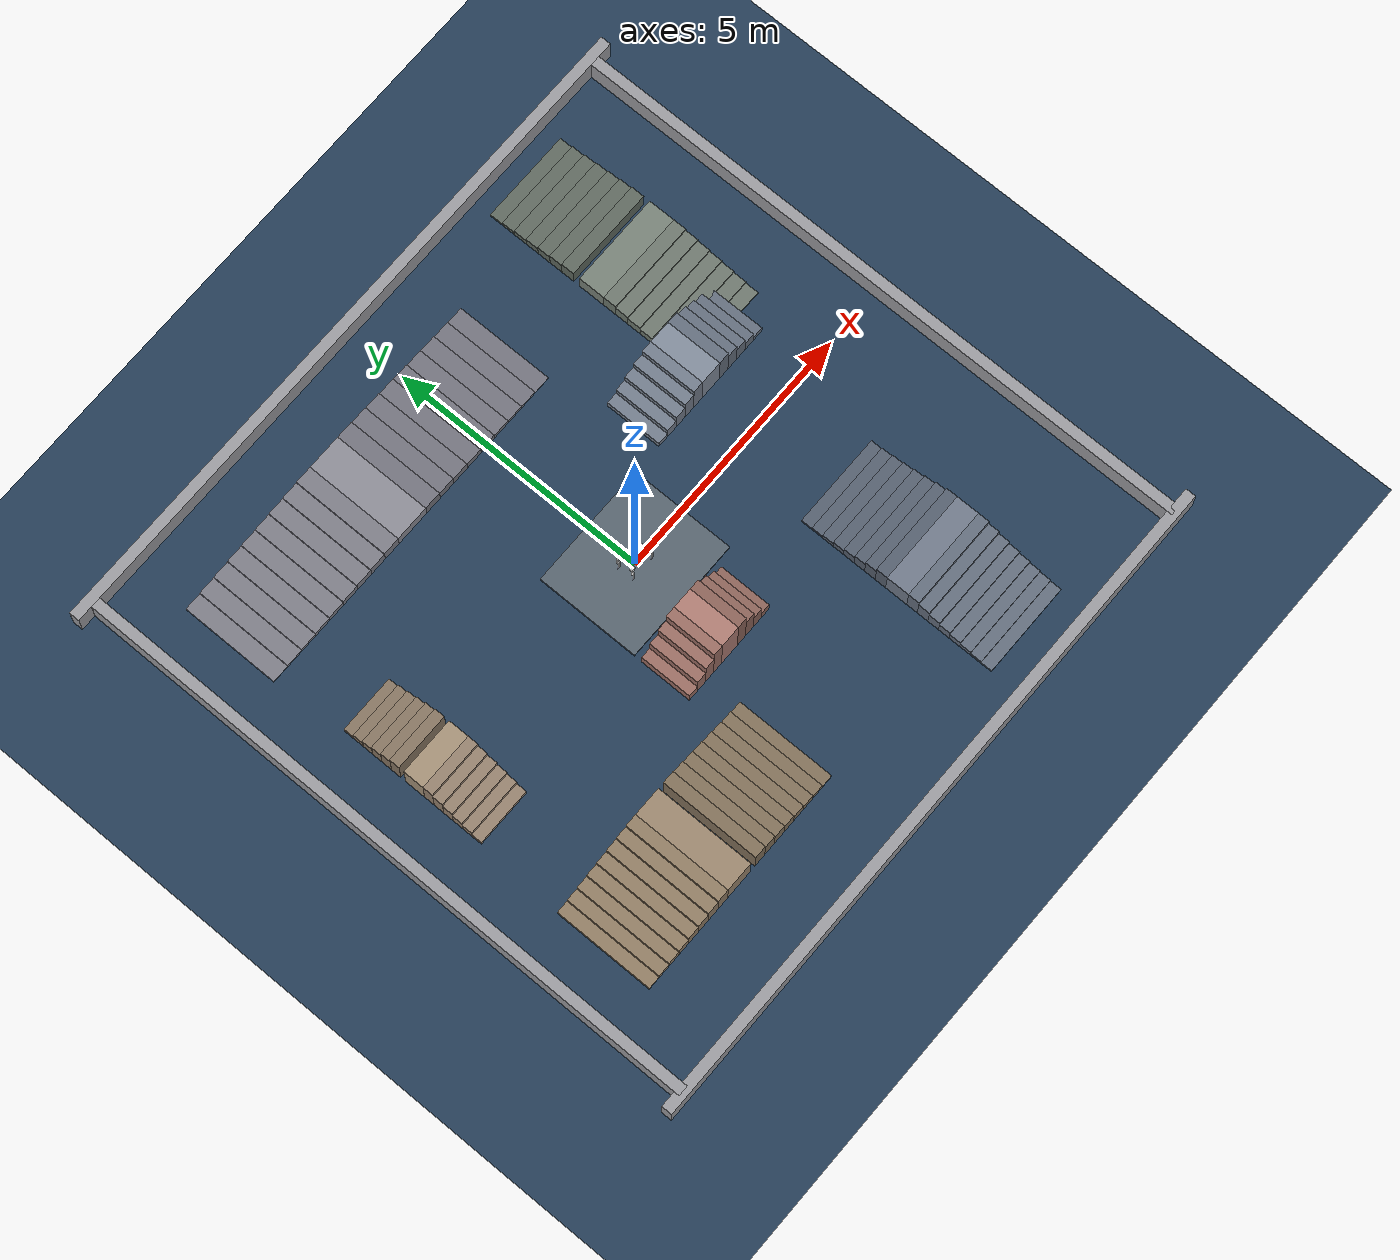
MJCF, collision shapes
<mujoco model="RCV8 scene">
  <include file="RCV8.xml"/>

  <!--
    机器人本体已经在 RCV8.xml 中改成 floating base，并设置了标准站立初始高度，
    因此 scene 不再需要通过下移地面来“迁就”模型位置。
    这里把 statistic 中心恢复到更接近常规站立机器人的高度，便于默认视角显示。
  -->
  <statistic center="0 0 0.25" extent="0.8"/>

  <visual>
    <headlight diffuse="0.6 0.6 0.6" ambient="0.3 0.3 0.3" specular="0 0 0"/>
    <rgba haze="0.15 0.25 0.35 1"/>
    <global azimuth="-130" elevation="-20"/>
  </visual>

  <asset>
    <texture type="skybox" builtin="gradient" rgb1="0.3 0.5 0.7" rgb2="0 0 0" width="512" height="3072"/>
    <texture type="2d" name="groundplane" builtin="checker" mark="edge" rgb1="0.2 0.3 0.4" rgb2="0.1 0.2 0.3" markrgb="0.8 0.8 0.8" width="300" height="300"/>
    <material name="groundplane" texture="groundplane" texuniform="true" texrepeat="5 5" reflectance="0.2"/>
  </asset>

  <worldbody>
    <light pos="0 0 2.2" dir="0 0 -1" directional="true"/>
    <geom name="floor" size="0 0 0.05" type="plane" material="groundplane"/>

    <!-- 外围围挡：用四面低墙形成方形边界，避免机器人跑出测试区域。 -->
    <geom name="wall_north" type="box" pos="0  6.20 0.25" size="6.60 0.10 0.25" rgba="0.62 0.62 0.64 1" friction="1.0 0.02 0.02"/>
    <geom name="wall_south" type="box" pos="0 -6.20 0.25" size="6.60 0.10 0.25" rgba="0.62 0.62 0.64 1" friction="1.0 0.02 0.02"/>
    <geom name="wall_east"  type="box" pos="6.20 0  0.25" size="0.10 6.20 0.25" rgba="0.62 0.62 0.64 1" friction="1.0 0.02 0.02"/>
    <geom name="wall_west"  type="box" pos="-6.20 0 0.25" size="0.10 6.20 0.25" rgba="0.62 0.62 0.64 1" friction="1.0 0.02 0.02"/>

    <!-- 中央出生平地区：留出较干净的站立与起步空间，避免初始化直接压在障碍上。 -->
    <geom name="spawn_pad" type="box" pos="0 0 0.02" size="1.20 1.00 0.02" rgba="0.35 0.40 0.44 1" friction="1.0 0.02 0.02"/>

    <!-- 左上缓坡长楼梯：9 级上行 + 平台 + 9 级下行，单级 3cm，踏步更长。 -->
    <geom name="stairs_gentle_nw_up_1"  type="box" pos="-5.10 4.10 0.015" size="0.17 0.95 0.015" rgba="0.50 0.50 0.54 1" friction="1.1 0.02 0.02"/>
    <geom name="stairs_gentle_nw_up_2"  type="box" pos="-4.76 4.10 0.030" size="0.17 0.95 0.030" rgba="0.50 0.50 0.54 1" friction="1.1 0.02 0.02"/>
    <geom name="stairs_gentle_nw_up_3"  type="box" pos="-4.42 4.10 0.045" size="0.17 0.95 0.045" rgba="0.50 0.50 0.54 1" friction="1.1 0.02 0.02"/>
    <geom name="stairs_gentle_nw_up_4"  type="box" pos="-4.08 4.10 0.060" size="0.17 0.95 0.060" rgba="0.50 0.50 0.54 1" friction="1.1 0.02 0.02"/>
    <geom name="stairs_gentle_nw_up_5"  type="box" pos="-3.74 4.10 0.075" size="0.17 0.95 0.075" rgba="0.50 0.50 0.54 1" friction="1.1 0.02 0.02"/>
    <geom name="stairs_gentle_nw_up_6"  type="box" pos="-3.40 4.10 0.090" size="0.17 0.95 0.090" rgba="0.50 0.50 0.54 1" friction="1.1 0.02 0.02"/>
    <geom name="stairs_gentle_nw_up_7"  type="box" pos="-3.06 4.10 0.105" size="0.17 0.95 0.105" rgba="0.50 0.50 0.54 1" friction="1.1 0.02 0.02"/>
    <geom name="stairs_gentle_nw_up_8"  type="box" pos="-2.72 4.10 0.120" size="0.17 0.95 0.120" rgba="0.50 0.50 0.54 1" friction="1.1 0.02 0.02"/>
    <geom name="stairs_gentle_nw_up_9"  type="box" pos="-2.38 4.10 0.135" size="0.17 0.95 0.135" rgba="0.50 0.50 0.54 1" friction="1.1 0.02 0.02"/>
    <geom name="stairs_gentle_nw_landing" type="box" pos="-1.87 4.10 0.135" size="0.34 0.95 0.135" rgba="0.56 0.56 0.60 1" friction="1.1 0.02 0.02"/>
    <geom name="stairs_gentle_nw_down_1" type="box" pos="-1.36 4.10 0.135" size="0.17 0.95 0.135" rgba="0.46 0.46 0.50 1" friction="1.1 0.02 0.02"/>
    <geom name="stairs_gentle_nw_down_2" type="box" pos="-1.02 4.10 0.120" size="0.17 0.95 0.120" rgba="0.46 0.46 0.50 1" friction="1.1 0.02 0.02"/>
    <geom name="stairs_gentle_nw_down_3" type="box" pos="-0.68 4.10 0.105" size="0.17 0.95 0.105" rgba="0.46 0.46 0.50 1" friction="1.1 0.02 0.02"/>
    <geom name="stairs_gentle_nw_down_4" type="box" pos="-0.34 4.10 0.090" size="0.17 0.95 0.090" rgba="0.46 0.46 0.50 1" friction="1.1 0.02 0.02"/>
    <geom name="stairs_gentle_nw_down_5" type="box" pos="0.00 4.10 0.075" size="0.17 0.95 0.075" rgba="0.46 0.46 0.50 1" friction="1.1 0.02 0.02"/>
    <geom name="stairs_gentle_nw_down_6" type="box" pos="0.34 4.10 0.060" size="0.17 0.95 0.060" rgba="0.46 0.46 0.50 1" friction="1.1 0.02 0.02"/>
    <geom name="stairs_gentle_nw_down_7" type="box" pos="0.68 4.10 0.045" size="0.17 0.95 0.045" rgba="0.46 0.46 0.50 1" friction="1.1 0.02 0.02"/>
    <geom name="stairs_gentle_nw_down_8" type="box" pos="1.02 4.10 0.030" size="0.17 0.95 0.030" rgba="0.46 0.46 0.50 1" friction="1.1 0.02 0.02"/>
    <geom name="stairs_gentle_nw_down_9" type="box" pos="1.36 4.10 0.015" size="0.17 0.95 0.015" rgba="0.46 0.46 0.50 1" friction="1.1 0.02 0.02"/>

    <!-- 右上中坡楼梯：7 级上行 + 平台 + 7 级下行，单级 5cm，坡度中等。 -->
    <geom name="stairs_medium_ne_up_1"  type="box" pos="4.00 1.60 0.025" size="0.90 0.13 0.025" rgba="0.44 0.48 0.44 1" friction="1.1 0.02 0.02"/>
    <geom name="stairs_medium_ne_up_2"  type="box" pos="4.00 1.86 0.050" size="0.90 0.13 0.050" rgba="0.44 0.48 0.44 1" friction="1.1 0.02 0.02"/>
    <geom name="stairs_medium_ne_up_3"  type="box" pos="4.00 2.12 0.075" size="0.90 0.13 0.075" rgba="0.44 0.48 0.44 1" friction="1.1 0.02 0.02"/>
    <geom name="stairs_medium_ne_up_4"  type="box" pos="4.00 2.38 0.100" size="0.90 0.13 0.100" rgba="0.44 0.48 0.44 1" friction="1.1 0.02 0.02"/>
    <geom name="stairs_medium_ne_up_5"  type="box" pos="4.00 2.64 0.125" size="0.90 0.13 0.125" rgba="0.44 0.48 0.44 1" friction="1.1 0.02 0.02"/>
    <geom name="stairs_medium_ne_up_6"  type="box" pos="4.00 2.90 0.150" size="0.90 0.13 0.150" rgba="0.44 0.48 0.44 1" friction="1.1 0.02 0.02"/>
    <geom name="stairs_medium_ne_up_7"  type="box" pos="4.00 3.16 0.175" size="0.90 0.13 0.175" rgba="0.44 0.48 0.44 1" friction="1.1 0.02 0.02"/>
    <geom name="stairs_medium_ne_landing" type="box" pos="4.00 3.55 0.175" size="0.90 0.26 0.175" rgba="0.48 0.52 0.48 1" friction="1.1 0.02 0.02"/>
    <geom name="stairs_medium_ne_down_1" type="box" pos="4.00 4.07 0.175" size="0.90 0.13 0.175" rgba="0.38 0.42 0.38 1" friction="1.1 0.02 0.02"/>
    <geom name="stairs_medium_ne_down_2" type="box" pos="4.00 4.33 0.150" size="0.90 0.13 0.150" rgba="0.38 0.42 0.38 1" friction="1.1 0.02 0.02"/>
    <geom name="stairs_medium_ne_down_3" type="box" pos="4.00 4.59 0.125" size="0.90 0.13 0.125" rgba="0.38 0.42 0.38 1" friction="1.1 0.02 0.02"/>
    <geom name="stairs_medium_ne_down_4" type="box" pos="4.00 4.85 0.100" size="0.90 0.13 0.100" rgba="0.38 0.42 0.38 1" friction="1.1 0.02 0.02"/>
    <geom name="stairs_medium_ne_down_5" type="box" pos="4.00 5.11 0.075" size="0.90 0.13 0.075" rgba="0.38 0.42 0.38 1" friction="1.1 0.02 0.02"/>
    <geom name="stairs_medium_ne_down_6" type="box" pos="4.00 5.37 0.050" size="0.90 0.13 0.050" rgba="0.38 0.42 0.38 1" friction="1.1 0.02 0.02"/>
    <geom name="stairs_medium_ne_down_7" type="box" pos="4.00 5.63 0.025" size="0.90 0.13 0.025" rgba="0.38 0.42 0.38 1" friction="1.1 0.02 0.02"/>

    <!-- 左下陡坡楼梯：8 级上行 + 平台 + 8 级下行，单级 7cm，踏步更短。 -->
    <geom name="stairs_steep_sw_up_1"  type="box" pos="-5.11 -3.75 0.035" size="0.12 0.95 0.035" rgba="0.58 0.50 0.40 1" friction="1.15 0.02 0.02"/>
    <geom name="stairs_steep_sw_up_2"  type="box" pos="-4.87 -3.75 0.070" size="0.12 0.95 0.070" rgba="0.58 0.50 0.40 1" friction="1.15 0.02 0.02"/>
    <geom name="stairs_steep_sw_up_3"  type="box" pos="-4.63 -3.75 0.105" size="0.12 0.95 0.105" rgba="0.58 0.50 0.40 1" friction="1.15 0.02 0.02"/>
    <geom name="stairs_steep_sw_up_4"  type="box" pos="-4.39 -3.75 0.140" size="0.12 0.95 0.140" rgba="0.58 0.50 0.40 1" friction="1.15 0.02 0.02"/>
    <geom name="stairs_steep_sw_up_5"  type="box" pos="-4.15 -3.75 0.175" size="0.12 0.95 0.175" rgba="0.58 0.50 0.40 1" friction="1.15 0.02 0.02"/>
    <geom name="stairs_steep_sw_up_6"  type="box" pos="-3.91 -3.75 0.210" size="0.12 0.95 0.210" rgba="0.58 0.50 0.40 1" friction="1.15 0.02 0.02"/>
    <geom name="stairs_steep_sw_up_7"  type="box" pos="-3.67 -3.75 0.245" size="0.12 0.95 0.245" rgba="0.58 0.50 0.40 1" friction="1.15 0.02 0.02"/>
    <geom name="stairs_steep_sw_up_8"  type="box" pos="-3.43 -3.75 0.280" size="0.12 0.95 0.280" rgba="0.58 0.50 0.40 1" friction="1.15 0.02 0.02"/>
    <geom name="stairs_steep_sw_landing" type="box" pos="-3.03 -3.75 0.280" size="0.28 0.95 0.280" rgba="0.62 0.54 0.44 1" friction="1.15 0.02 0.02"/>
    <geom name="stairs_steep_sw_down_1" type="box" pos="-2.51 -3.75 0.280" size="0.12 0.95 0.280" rgba="0.52 0.45 0.36 1" friction="1.15 0.02 0.02"/>
    <geom name="stairs_steep_sw_down_2" type="box" pos="-2.27 -3.75 0.245" size="0.12 0.95 0.245" rgba="0.52 0.45 0.36 1" friction="1.15 0.02 0.02"/>
    <geom name="stairs_steep_sw_down_3" type="box" pos="-2.03 -3.75 0.210" size="0.12 0.95 0.210" rgba="0.52 0.45 0.36 1" friction="1.15 0.02 0.02"/>
    <geom name="stairs_steep_sw_down_4" type="box" pos="-1.79 -3.75 0.175" size="0.12 0.95 0.175" rgba="0.52 0.45 0.36 1" friction="1.15 0.02 0.02"/>
    <geom name="stairs_steep_sw_down_5" type="box" pos="-1.55 -3.75 0.140" size="0.12 0.95 0.140" rgba="0.52 0.45 0.36 1" friction="1.15 0.02 0.02"/>
    <geom name="stairs_steep_sw_down_6" type="box" pos="-1.31 -3.75 0.105" size="0.12 0.95 0.105" rgba="0.52 0.45 0.36 1" friction="1.15 0.02 0.02"/>
    <geom name="stairs_steep_sw_down_7" type="box" pos="-1.07 -3.75 0.070" size="0.12 0.95 0.070" rgba="0.52 0.45 0.36 1" friction="1.15 0.02 0.02"/>
    <geom name="stairs_steep_sw_down_8" type="box" pos="-0.83 -3.75 0.035" size="0.12 0.95 0.035" rgba="0.52 0.45 0.36 1" friction="1.15 0.02 0.02"/>

    <!-- 右下变步高楼梯：8 级上行 + 平台 + 8 级下行，单级抬升 4cm 到 10cm，不超过 20cm。 -->
    <geom name="stairs_mixed_se_up_1"  type="box" pos="3.20 -5.45 0.020" size="0.90 0.11 0.020" rgba="0.40 0.44 0.50 1" friction="1.15 0.02 0.02"/>
    <geom name="stairs_mixed_se_up_2"  type="box" pos="3.20 -5.23 0.040" size="0.90 0.11 0.040" rgba="0.40 0.44 0.50 1" friction="1.15 0.02 0.02"/>
    <geom name="stairs_mixed_se_up_3"  type="box" pos="3.20 -5.01 0.065" size="0.90 0.11 0.065" rgba="0.40 0.44 0.50 1" friction="1.15 0.02 0.02"/>
    <geom name="stairs_mixed_se_up_4"  type="box" pos="3.20 -4.79 0.095" size="0.90 0.11 0.095" rgba="0.40 0.44 0.50 1" friction="1.15 0.02 0.02"/>
    <geom name="stairs_mixed_se_up_5"  type="box" pos="3.20 -4.57 0.130" size="0.90 0.11 0.130" rgba="0.40 0.44 0.50 1" friction="1.15 0.02 0.02"/>
    <geom name="stairs_mixed_se_up_6"  type="box" pos="3.20 -4.35 0.170" size="0.90 0.11 0.170" rgba="0.40 0.44 0.50 1" friction="1.15 0.02 0.02"/>
    <geom name="stairs_mixed_se_up_7"  type="box" pos="3.20 -4.13 0.215" size="0.90 0.11 0.215" rgba="0.40 0.44 0.50 1" friction="1.15 0.02 0.02"/>
    <geom name="stairs_mixed_se_up_8"  type="box" pos="3.20 -3.91 0.265" size="0.90 0.11 0.265" rgba="0.40 0.44 0.50 1" friction="1.15 0.02 0.02"/>
    <geom name="stairs_mixed_se_landing" type="box" pos="3.20 -3.58 0.265" size="0.90 0.22 0.265" rgba="0.45 0.49 0.55 1" friction="1.15 0.02 0.02"/>
    <geom name="stairs_mixed_se_down_1" type="box" pos="3.20 -3.25 0.265" size="0.90 0.11 0.265" rgba="0.34 0.38 0.44 1" friction="1.15 0.02 0.02"/>
    <geom name="stairs_mixed_se_down_2" type="box" pos="3.20 -3.03 0.215" size="0.90 0.11 0.215" rgba="0.34 0.38 0.44 1" friction="1.15 0.02 0.02"/>
    <geom name="stairs_mixed_se_down_3" type="box" pos="3.20 -2.81 0.170" size="0.90 0.11 0.170" rgba="0.34 0.38 0.44 1" friction="1.15 0.02 0.02"/>
    <geom name="stairs_mixed_se_down_4" type="box" pos="3.20 -2.59 0.130" size="0.90 0.11 0.130" rgba="0.34 0.38 0.44 1" friction="1.15 0.02 0.02"/>
    <geom name="stairs_mixed_se_down_5" type="box" pos="3.20 -2.37 0.095" size="0.90 0.11 0.095" rgba="0.34 0.38 0.44 1" friction="1.15 0.02 0.02"/>
    <geom name="stairs_mixed_se_down_6" type="box" pos="3.20 -2.15 0.065" size="0.90 0.11 0.065" rgba="0.34 0.38 0.44 1" friction="1.15 0.02 0.02"/>
    <geom name="stairs_mixed_se_down_7" type="box" pos="3.20 -1.93 0.040" size="0.90 0.11 0.040" rgba="0.34 0.38 0.44 1" friction="1.15 0.02 0.02"/>
    <geom name="stairs_mixed_se_down_8" type="box" pos="3.20 -1.71 0.020" size="0.90 0.11 0.020" rgba="0.34 0.38 0.44 1" friction="1.15 0.02 0.02"/>

    <!-- 中左更陡楼梯：6 级上行 + 平台 + 6 级下行，单级 10cm。 -->
    <geom name="stairs_sharp_west_up_1"  type="box" pos="-4.60 -1.05 0.050" size="0.55 0.10 0.050" rgba="0.60 0.52 0.44 1" friction="1.18 0.02 0.02"/>
    <geom name="stairs_sharp_west_up_2"  type="box" pos="-4.60 -0.85 0.100" size="0.55 0.10 0.100" rgba="0.60 0.52 0.44 1" friction="1.18 0.02 0.02"/>
    <geom name="stairs_sharp_west_up_3"  type="box" pos="-4.60 -0.65 0.150" size="0.55 0.10 0.150" rgba="0.60 0.52 0.44 1" friction="1.18 0.02 0.02"/>
    <geom name="stairs_sharp_west_up_4"  type="box" pos="-4.60 -0.45 0.200" size="0.55 0.10 0.200" rgba="0.60 0.52 0.44 1" friction="1.18 0.02 0.02"/>
    <geom name="stairs_sharp_west_up_5"  type="box" pos="-4.60 -0.25 0.250" size="0.55 0.10 0.250" rgba="0.60 0.52 0.44 1" friction="1.18 0.02 0.02"/>
    <geom name="stairs_sharp_west_up_6"  type="box" pos="-4.60 -0.05 0.300" size="0.55 0.10 0.300" rgba="0.60 0.52 0.44 1" friction="1.18 0.02 0.02"/>
    <geom name="stairs_sharp_west_landing" type="box" pos="-4.60 0.25 0.300" size="0.55 0.20 0.300" rgba="0.66 0.58 0.48 1" friction="1.18 0.02 0.02"/>
    <geom name="stairs_sharp_west_down_1" type="box" pos="-4.60 0.65 0.300" size="0.55 0.10 0.300" rgba="0.54 0.47 0.39 1" friction="1.18 0.02 0.02"/>
    <geom name="stairs_sharp_west_down_2" type="box" pos="-4.60 0.85 0.250" size="0.55 0.10 0.250" rgba="0.54 0.47 0.39 1" friction="1.18 0.02 0.02"/>
    <geom name="stairs_sharp_west_down_3" type="box" pos="-4.60 1.05 0.200" size="0.55 0.10 0.200" rgba="0.54 0.47 0.39 1" friction="1.18 0.02 0.02"/>
    <geom name="stairs_sharp_west_down_4" type="box" pos="-4.60 1.25 0.150" size="0.55 0.10 0.150" rgba="0.54 0.47 0.39 1" friction="1.18 0.02 0.02"/>
    <geom name="stairs_sharp_west_down_5" type="box" pos="-4.60 1.45 0.100" size="0.55 0.10 0.100" rgba="0.54 0.47 0.39 1" friction="1.18 0.02 0.02"/>
    <geom name="stairs_sharp_west_down_6" type="box" pos="-4.60 1.65 0.050" size="0.55 0.10 0.050" rgba="0.54 0.47 0.39 1" friction="1.18 0.02 0.02"/>

    <!-- 中右高陡楼梯：5 级上行 + 平台 + 5 级下行，单级 15cm。 -->
    <geom name="stairs_high_east_up_1"  type="box" pos="1.90 1.55 0.075" size="0.11 0.55 0.075" rgba="0.46 0.50 0.56 1" friction="1.20 0.02 0.02"/>
    <geom name="stairs_high_east_up_2"  type="box" pos="2.12 1.55 0.150" size="0.11 0.55 0.150" rgba="0.46 0.50 0.56 1" friction="1.20 0.02 0.02"/>
    <geom name="stairs_high_east_up_3"  type="box" pos="2.34 1.55 0.225" size="0.11 0.55 0.225" rgba="0.46 0.50 0.56 1" friction="1.20 0.02 0.02"/>
    <geom name="stairs_high_east_up_4"  type="box" pos="2.56 1.55 0.300" size="0.11 0.55 0.300" rgba="0.46 0.50 0.56 1" friction="1.20 0.02 0.02"/>
    <geom name="stairs_high_east_up_5"  type="box" pos="2.78 1.55 0.375" size="0.11 0.55 0.375" rgba="0.46 0.50 0.56 1" friction="1.20 0.02 0.02"/>
    <geom name="stairs_high_east_landing" type="box" pos="3.11 1.55 0.375" size="0.22 0.55 0.375" rgba="0.52 0.56 0.62 1" friction="1.20 0.02 0.02"/>
    <geom name="stairs_high_east_down_1" type="box" pos="3.44 1.55 0.375" size="0.11 0.55 0.375" rgba="0.40 0.44 0.50 1" friction="1.20 0.02 0.02"/>
    <geom name="stairs_high_east_down_2" type="box" pos="3.66 1.55 0.300" size="0.11 0.55 0.300" rgba="0.40 0.44 0.50 1" friction="1.20 0.02 0.02"/>
    <geom name="stairs_high_east_down_3" type="box" pos="3.88 1.55 0.225" size="0.11 0.55 0.225" rgba="0.40 0.44 0.50 1" friction="1.20 0.02 0.02"/>
    <geom name="stairs_high_east_down_4" type="box" pos="4.10 1.55 0.150" size="0.11 0.55 0.150" rgba="0.40 0.44 0.50 1" friction="1.20 0.02 0.02"/>
    <geom name="stairs_high_east_down_5" type="box" pos="4.32 1.55 0.075" size="0.11 0.55 0.075" rgba="0.40 0.44 0.50 1" friction="1.20 0.02 0.02"/>

    <!-- 中央偏南极陡楼梯：4 级上行 + 平台 + 4 级下行，最陡单级 25cm。 -->
    <geom name="stairs_extreme_south_up_1"  type="box" pos="-1.10 -1.65 0.125" size="0.10 0.50 0.125" rgba="0.62 0.44 0.40 1" friction="1.22 0.02 0.02"/>
    <geom name="stairs_extreme_south_up_2"  type="box" pos="-0.90 -1.65 0.250" size="0.10 0.50 0.250" rgba="0.62 0.44 0.40 1" friction="1.22 0.02 0.02"/>
    <geom name="stairs_extreme_south_up_3"  type="box" pos="-0.70 -1.65 0.375" size="0.10 0.50 0.375" rgba="0.62 0.44 0.40 1" friction="1.22 0.02 0.02"/>
    <geom name="stairs_extreme_south_up_4"  type="box" pos="-0.50 -1.65 0.500" size="0.10 0.50 0.500" rgba="0.62 0.44 0.40 1" friction="1.22 0.02 0.02"/>
    <geom name="stairs_extreme_south_landing" type="box" pos="-0.20 -1.65 0.500" size="0.20 0.50 0.500" rgba="0.70 0.50 0.46 1" friction="1.22 0.02 0.02"/>
    <geom name="stairs_extreme_south_down_1" type="box" pos="0.10 -1.65 0.500" size="0.10 0.50 0.500" rgba="0.56 0.40 0.36 1" friction="1.22 0.02 0.02"/>
    <geom name="stairs_extreme_south_down_2" type="box" pos="0.30 -1.65 0.375" size="0.10 0.50 0.375" rgba="0.56 0.40 0.36 1" friction="1.22 0.02 0.02"/>
    <geom name="stairs_extreme_south_down_3" type="box" pos="0.50 -1.65 0.250" size="0.10 0.50 0.250" rgba="0.56 0.40 0.36 1" friction="1.22 0.02 0.02"/>
    <geom name="stairs_extreme_south_down_4" type="box" pos="0.70 -1.65 0.125" size="0.10 0.50 0.125" rgba="0.56 0.40 0.36 1" friction="1.22 0.02 0.02"/>
  </worldbody>

</mujoco>

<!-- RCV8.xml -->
<mujoco model="RCV8">
  <compiler angle="radian" meshdir="../meshes/"/>

  <asset>
    <mesh name="base_link" content_type="model/stl" file="base_link.STL"/>
    <mesh name="FL" content_type="model/stl" file="FL.STL"/>
    <mesh name="FL_thigh" content_type="model/stl" file="FL_thigh.STL"/>
    <mesh name="FL_calf" content_type="model/stl" file="FL_calf.STL"/>
    <mesh name="FL_foot" content_type="model/stl" file="FL_foot.STL"/>
    <mesh name="FR" content_type="model/stl" file="FR.STL"/>
    <mesh name="FR_thigh" content_type="model/stl" file="FR_thigh.STL"/>
    <mesh name="FR_calf" content_type="model/stl" file="FR_calf.STL"/>
    <mesh name="FR_foot" content_type="model/stl" file="FR_foot.STL"/>
    <mesh name="RL" content_type="model/stl" file="RL.STL"/>
    <mesh name="RL_thigh" content_type="model/stl" file="RL_thigh.STL"/>
    <mesh name="RL_calf" content_type="model/stl" file="RL_calf.STL"/>
    <mesh name="RL_foot" content_type="model/stl" file="RL_foot.STL"/>
    <mesh name="RR" content_type="model/stl" file="RR.STL"/>
    <mesh name="RR_thigh" content_type="model/stl" file="RR_thigh.STL"/>
    <mesh name="RR_calf" content_type="model/stl" file="RR_calf.STL"/>
    <mesh name="RR_foot" content_type="model/stl" file="RR_foot.STL"/>
  </asset>

  <worldbody>

    <body name="base_link" pos="0 0 0.52">
      <!-- freejoint 让基座不再固定在世界坐标系中。 -->
      <freejoint/>
      <!-- #################### base_link inertial: restored from URDF #################### -->
      <!--
        恢复 base_link 的机身质量、质心和转动惯量。
        这组参数直接对应 URDF 中 base_link 的 inertial，只是已经转换成 MuJoCo 使用的
        主惯量轴表达形式：pos + quat + diaginertia。
        如果这里缺失，机身 6kg 质量会完全丢掉，导致整机动力学明显失真。
      -->
      <inertial
        pos="0.0080583 0.0005398 0.0606645"
        quat="0.99977262 -0.00198334 -0.01898805 0.00949909"
        mass="6"
        diaginertia="0.03513409 0.07286955 0.08574806"/>
      <!-- #################### end base_link inertial restore #################### -->
      <!--
        在 base_link 原点放置 IMU site。
        你说 IMU 与 base_link 坐标点重合，因此这里直接把 imu_site 放在根 body 的局部原点 pos="0 0 0"。
        这样读取到的 IMU 量就是以 base_link 原点为参考的机身传感信息。
      -->
      <site name="imu_site" pos="0 0 0" size="0.01" rgba="1 0 0 0.3"/>

    <geom type="mesh" contype="0" conaffinity="0" group="1" density="0" rgba="1 1 1 1" mesh="base_link"/>
    <geom size="0.17 0.1 0.0799" pos="0 0 0.0429" type="box" rgba="1 1 1 1"/>
    <body name="FL" pos="0.23285 0.0625 0.05425">
      <inertial pos="-0.0117255 -0.0121303 -4.62e-05" quat="0.545529 0.549095 0.449536 0.445882" mass="0.75" diaginertia="0.000374624 0.000254404 0.000180572"/>
      <joint name="FL_hip_joint" pos="0 0 0" axis="1 0 0" range="-1.05 1.05" actuatorfrcrange="-23.7 23.7"/>
      <geom type="mesh" contype="0" conaffinity="0" group="1" density="0" rgba="1 1 1 1" mesh="FL"/>
      <body name="FL_thigh" pos="0 0.0904 0">
        <inertial pos="-0.0009008 -0.0236371 -0.0344781" quat="0.970181 0.0798687 0.0572177 -0.221574" mass="0.85" diaginertia="0.00509779 0.00496452 0.000901789"/>
        <joint name="FL_thigh_joint" pos="0 0 0" axis="0 1 0" range="-1.57 3.49" actuatorfrcrange="-23.7 23.7"/>
        <geom type="mesh" contype="0" conaffinity="0" group="1" density="0" rgba="1 1 1 1" mesh="FL_thigh"/>
        <geom size="0.045 0.025" pos="-0.003 -0.008 -0.002" quat="0.707107 0.707107 0 0" type="cylinder" rgba="1 1 1 1"/>
        <geom size="0.0205 0.081" pos="-0.022 0 -0.14" type="cylinder" rgba="1 1 1 1"/>
        <body name="FL_calf" pos="0 0 -0.26">
          <inertial pos="-0.0373926 -0.0072487 -0.19996" quat="0.631033 0.0880937 0.0968141 0.764633" mass="0.15" diaginertia="0.00257073 0.00212518 0.000471437"/>
          <joint name="FL_calf_joint" pos="0 0 0" axis="0 1 0" range="-2.72 -0.84" actuatorfrcrange="-23.7 23.7"/>
          <geom type="mesh" contype="0" conaffinity="0" group="1" density="0" rgba="1 1 1 1" mesh="FL_calf"/>
          <geom size="0.0125 0.125" pos="0.0155 0 -0.125" type="cylinder" rgba="1 1 1 1"/>
          <geom pos="-0.014048 0 -0.29437" quat="1 0 0 0" type="mesh" contype="0" conaffinity="0" group="1" density="0" rgba="0.79216 0.81961 0.93333 1" mesh="FL_foot"/>
          <geom size="0.0202" pos="-0.009748 0.0002 -0.28937" rgba="0.79216 0.81961 0.93333 1"/>
          <geom size="0.0135 0.01 0.0075" pos="0.006452 0.0002 -0.25937" type="box" rgba="0.79216 0.81961 0.93333 1"/>
        </body>
      </body>
    </body>
    <body name="FR" pos="0.23285 -0.0625 0.05425">
      <inertial pos="-0.0117255 0.0121303 4.62e-05" quat="0.449536 0.445882 0.545529 0.549095" mass="0.75" diaginertia="0.000374624 0.000254404 0.000180572"/>
      <joint name="FR_hip_joint" pos="0 0 0" axis="1 0 0" range="-1.05 1.05" actuatorfrcrange="-23.7 23.7"/>
      <geom type="mesh" contype="0" conaffinity="0" group="1" density="0" rgba="1 1 1 1" mesh="FR"/>
      <body name="FR_thigh" pos="0 -0.0904 0">
        <inertial pos="-0.0009016 0.0236316 -0.0344912" quat="0.97019 -0.0798613 0.0572083 0.22154" mass="0.85" diaginertia="0.00509838 0.00496511 0.000901908"/>
        <joint name="FR_thigh_joint" pos="0 0 0" axis="0 1 0" range="-1.57 3.49" actuatorfrcrange="-23.7 23.7"/>
        <geom type="mesh" contype="0" conaffinity="0" group="1" density="0" rgba="1 1 1 1" mesh="FR_thigh"/>
        <geom size="0.045 0.025" pos="-0.003 0.008 -0.002" quat="0.707107 0.707107 0 0" type="cylinder" rgba="1 1 1 1"/>
        <geom size="0.0205 0.081" pos="-0.022 0 -0.14" type="cylinder" rgba="1 1 1 1"/>
        <body name="FR_calf" pos="0 0 -0.26">
          <inertial pos="-0.037228 -0.00104274 -0.200372" quat="0.68453 0.092119 0.0902011 0.717493" mass="0.15" diaginertia="0.00255646 0.00212915 0.000450647"/>
          <joint name="FR_calf_joint" pos="0 0 0" axis="0 1 0" range="-2.72 -0.84" actuatorfrcrange="-23.7 23.7"/>
          <geom type="mesh" contype="0" conaffinity="0" group="1" density="0" rgba="1 1 1 1" mesh="FR_calf"/>
          <geom size="0.0125 0.125" pos="0.0155 0 -0.125" type="cylinder" rgba="1 1 1 1"/>
          <geom pos="-0.014048 0 -0.29437" quat="1 0 0 0" type="mesh" contype="0" conaffinity="0" group="1" density="0" rgba="0.79216 0.81961 0.93333 1" mesh="FR_foot"/>
          <geom size="0.0202" pos="-0.009748 -0.0002 -0.28937" rgba="0.79216 0.81961 0.93333 1"/>
          <geom size="0.0135 0.01 0.0075" pos="0.006452 -0.0002 -0.25937" type="box" rgba="0.79216 0.81961 0.93333 1"/>
        </body>
      </body>
    </body>
    <body name="RL" pos="-0.23285 0.0625 0.05425">
      <inertial pos="0.0117255 -0.0121303 4.62e-05" quat="0.445882 0.449536 0.549095 0.545529" mass="0.75" diaginertia="0.000374624 0.000254404 0.000180572"/>
      <joint name="RL_hip_joint" pos="0 0 0" axis="1 0 0" range="-1.05 1.05" actuatorfrcrange="-23.7 23.7"/>
      <geom type="mesh" contype="0" conaffinity="0" group="1" density="0" rgba="1 1 1 1" mesh="RL"/>
      <body name="RL_thigh" pos="0 0.0904 0">
        <inertial pos="-0.0009008 -0.0236371 -0.0344781" quat="0.970181 0.0798687 0.0572177 -0.221574" mass="0.85" diaginertia="0.00509779 0.00496452 0.000901789"/>
        <joint name="RL_thigh_joint" pos="0 0 0" axis="0 1 0" range="-0.52 4.54" actuatorfrcrange="-23.7 23.7"/>
        <geom type="mesh" contype="0" conaffinity="0" group="1" density="0" rgba="1 1 1 1" mesh="RL_thigh"/>
        <geom size="0.045 0.025" pos="-0.003 -0.008 -0.002" quat="0.707107 0.707107 0 0" type="cylinder" rgba="1 1 1 1"/>
        <geom size="0.0205 0.081" pos="-0.022 0 -0.14" type="cylinder" rgba="1 1 1 1"/>
        <body name="RL_calf" pos="0 0 -0.26">
          <inertial pos="-0.0373932 -0.00724883 -0.199961" quat="0.631032 0.0880969 0.0968182 0.764633" mass="0.15" diaginertia="0.00257077 0.00212521 0.000471442"/>
          <joint name="RL_calf_joint" pos="0 0 0" axis="0 1 0" range="-2.72 -0.84" actuatorfrcrange="-23.7 23.7"/>
          <geom type="mesh" contype="0" conaffinity="0" group="1" density="0" rgba="1 1 1 1" mesh="RL_calf"/>
          <geom size="0.0125 0.125" pos="0.0155 0 -0.125" type="cylinder" rgba="1 1 1 1"/>
          <geom pos="-0.0140482 0 -0.294374" quat="1 0 0 0" type="mesh" contype="0" conaffinity="0" group="1" density="0" rgba="0.79216 0.81961 0.93333 1" mesh="RL_foot"/>
          <geom size="0.0206" pos="-0.00974823 0.0002 -0.289374" rgba="0.79216 0.81961 0.93333 1"/>
          <geom size="0.0135 0.01 0.0075" pos="0.00645177 0.0002 -0.259374" type="box" rgba="0.79216 0.81961 0.93333 1"/>
        </body>
      </body>
    </body>
    <body name="RR" pos="-0.23285 -0.0625 0.05425">
      <inertial pos="0.0117255 0.0121303 -4.62e-05" quat="0.549095 0.545529 0.445882 0.449536" mass="0.75" diaginertia="0.000374624 0.000254404 0.000180572"/>
      <joint name="RR_hip_joint" pos="0 0 0" axis="1 0 0" range="-1.05 1.05" actuatorfrcrange="-23.7 23.7"/>
      <geom type="mesh" contype="0" conaffinity="0" group="1" density="0" rgba="1 1 1 1" mesh="RR"/>
      <body name="RR_thigh" pos="0 -0.0904 0">
        <inertial pos="-0.0009016 0.0236316 -0.0344912" quat="0.97019 -0.0798613 0.0572083 0.22154" mass="0.85" diaginertia="0.00509838 0.00496511 0.000901908"/>
        <joint name="RR_thigh_joint" pos="0 0 0" axis="0 1 0" range="-0.52 4.54" actuatorfrcrange="-23.7 23.7"/>
        <geom type="mesh" contype="0" conaffinity="0" group="1" density="0" rgba="1 1 1 1" mesh="RR_thigh"/>
        <geom size="0.045 0.025" pos="-0.003 0.008 -0.002" quat="0.707107 0.707107 0 0" type="cylinder" rgba="1 1 1 1"/>
        <geom size="0.0205 0.081" pos="-0.022 0 -0.14" type="cylinder" rgba="1 1 1 1"/>
        <body name="RR_calf" pos="0 0 -0.26">
          <inertial pos="-0.037228 -0.00104272 -0.200372" quat="0.68453 0.092119 0.0902011 0.717493" mass="0.15" diaginertia="0.00255646 0.00212915 0.000450647"/>
          <joint name="RR_calf_joint" pos="0 0 0" axis="0 1 0" range="-2.72 -0.84" actuatorfrcrange="-23.7 23.7"/>
          <geom type="mesh" contype="0" conaffinity="0" group="1" density="0" rgba="1 1 1 1" mesh="RR_calf"/>
          <geom size="0.0125 0.125" pos="0.0155 0 -0.125" type="cylinder" rgba="1 1 1 1"/>
          <geom pos="-0.014048 0 -0.29437" quat="1 0 0 0" type="mesh" contype="0" conaffinity="0" group="1" density="0" rgba="0.79216 0.81961 0.93333 1" mesh="RR_foot"/>
          <geom size="0.02" pos="-0.009748 -0.0002 -0.28937" rgba="0.79216 0.81961 0.93333 1"/>
          <geom size="0.0135 0.01 0.0075" pos="0.006452 -0.0002 -0.25937" type="box" rgba="0.79216 0.81961 0.93333 1"/>
        </body>
      </body>
    </body>
    </body>
  </worldbody>

  <actuator>
    <!-- 左前腿 3 个关节执行器 -->
    <motor name="FL_hip_motor" joint="FL_hip_joint" gear="1" ctrllimited="true" ctrlrange="-23.7 23.7"/>
    <motor name="FL_thigh_motor" joint="FL_thigh_joint" gear="1" ctrllimited="true" ctrlrange="-23.7 23.7"/>
    <motor name="FL_calf_motor" joint="FL_calf_joint" gear="1" ctrllimited="true" ctrlrange="-23.7 23.7"/>

    <!-- 右前腿 3 个关节执行器 -->
    <motor name="FR_hip_motor" joint="FR_hip_joint" gear="1" ctrllimited="true" ctrlrange="-23.7 23.7"/>
    <motor name="FR_thigh_motor" joint="FR_thigh_joint" gear="1" ctrllimited="true" ctrlrange="-23.7 23.7"/>
    <motor name="FR_calf_motor" joint="FR_calf_joint" gear="1" ctrllimited="true" ctrlrange="-23.7 23.7"/>

    <!-- 左后腿 3 个关节执行器 -->
    <motor name="RL_hip_motor" joint="RL_hip_joint" gear="1" ctrllimited="true" ctrlrange="-23.7 23.7"/>
    <motor name="RL_thigh_motor" joint="RL_thigh_joint" gear="1" ctrllimited="true" ctrlrange="-23.7 23.7"/>
    <motor name="RL_calf_motor" joint="RL_calf_joint" gear="1" ctrllimited="true" ctrlrange="-23.7 23.7"/>

    <!-- 右后腿 3 个关节执行器 -->
    <motor name="RR_hip_motor" joint="RR_hip_joint" gear="1" ctrllimited="true" ctrlrange="-23.7 23.7"/>
    <motor name="RR_thigh_motor" joint="RR_thigh_joint" gear="1" ctrllimited="true" ctrlrange="-23.7 23.7"/>
    <motor name="RR_calf_motor" joint="RR_calf_joint" gear="1" ctrllimited="true" ctrlrange="-23.7 23.7"/>
  </actuator>

  <!--
    更接近真实板载 IMU 的最小传感器集合。
    这里只保留板载 IMU 最核心的两类数据：
    1. gyro：角速度
    2. accelerometer：线加速度

    不再输出 framequat / framepos / framevel 这类“仿真里很方便，但真机 IMU 不会直接给你”的额外量，
    这样更接近真实机载惯导模块本身能直接测到的数据。
  -->
  <sensor>
    <gyro name="imu_gyro" site="imu_site"/>
    <accelerometer name="imu_acc" site="imu_site"/>
  </sensor>

</mujoco>
